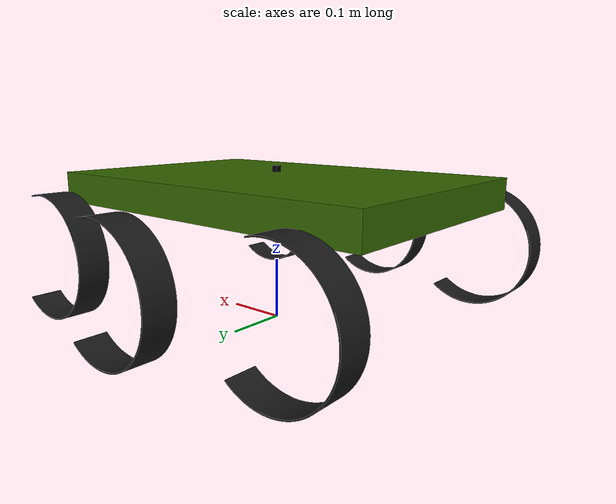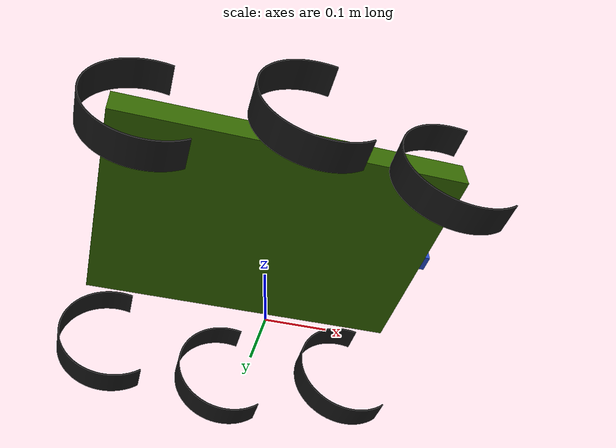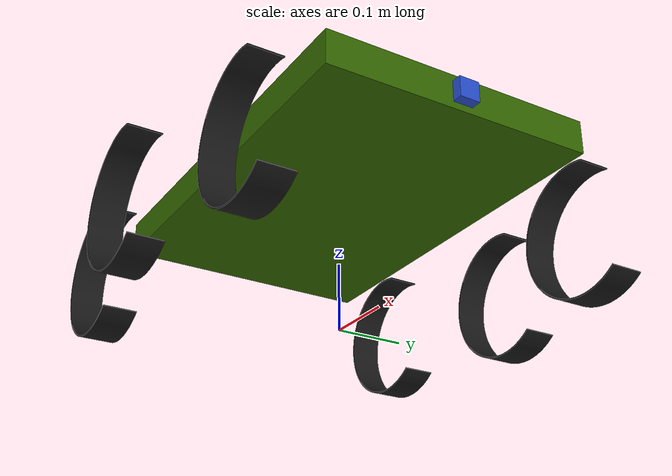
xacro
<?xml version="1.0" ?>
<robot name="hexapodo" xmlns:xacro="http://ros.org/wiki/xacro">

<!--        Definicion del robot hexapodo                                    -->

<!-- Archivos para incluir en el robot -->

<xacro:include filename="$(find hexapodo_description)/urdf/pata_c.xacro"/>
<xacro:include filename="$(find hexapodo_description)/urdf/base.xacro"/>
<xacro:include filename="$(find hexapodo_description)/urdf/sensores/kinect_camera.xacro"/>
<xacro:include filename="$(find hexapodo_description)/urdf/sensores/imu.xacro"/>
<xacro:include filename="$(find hexapodo_description)/urdf/sensores/hokuyo_sensor.xacro"/>

<!-- Declaracion del plugin gazebo_ros_control -->

<gazebo>
    <plugin name="gazebo_ros_control" filename="libgazebo_ros_control.so">
        <robotNamespace>/hexapodo</robotNamespace>
    </plugin>
</gazebo>

<!-- Instanciacion de las patas dentro de la descripcion del robot -->

<pata_c name="pata_1" parent_link="base_link" right="0">
    <origin xyz="${-235/1000} ${233/1000} ${0/1000}" rpy="0 0 0"/>
</pata_c>

<pata_c name="pata_2" parent_link="base_link" right="1">
    <origin xyz="${-235/1000} ${-233/1000} ${0/1000}" rpy="0 0 0"/>
</pata_c>

<pata_c name="pata_3" parent_link="base_link" right="0">
    <origin xyz="${0/1000} ${289/1000} ${0/1000}" rpy="0 0 0"/>
</pata_c>

<pata_c name="pata_4" parent_link="base_link" right="1">
    <origin xyz="${0/1000} ${-289/1000} ${0/1000}" rpy="0 0 0"/>
</pata_c>

<pata_c name="pata_5" parent_link="base_link" right="0">
    <origin xyz="${235/1000} ${233/1000} ${0/1000}" rpy="0 0 0"/>
</pata_c>

<pata_c name="pata_6" parent_link="base_link" right="1">
    <origin xyz="${235/1000} ${-233/1000} ${0/1000}" rpy="0 0 0"/>
</pata_c>

<!-- Instanciacion de la camara kinect dentro de la descripcion del robot -->

<!-- Instanciacion de la IMU dentro de la descripcion del robot -->

<imu name="imu1" parent_link="base_link">
    <origin xyz="${0/1000} ${0/1000} ${40/1000}" rpy="0 0 0"/>
</imu>

<hokuyo_sensor sensor_name="hokuyo" parent_name="base_link">
    <origin xyz="${300/1000} 0 0" rpy="0 0 0"/>
</hokuyo_sensor>

</robot>

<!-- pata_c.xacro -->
<robot name="pata_c" xmlns:xacro="http://ros.org/wiki/xacro">

<xacro:property name="motor_reduction"  value="${529.0/16}"/>
<xacro:property name="motor_max_effort" value="${3.75}"/>
<xacro:property name="motor_max_rev"    value="${1256.637/motor_reduction}"/>

<xacro:macro name="pata_c" params="name parent_link right *origin">

    <!--        Definicion de las patas en C del robot hexapodo              -->

    <!--Definicion del link de la pata-->

    <link name="${name}_pata_c_link">

        <!-- El origen de la pata varia en funcion de si se trata de una pata de la zona izquierda -->
        <!-- o de la zona derecha que se pasa como parametro -->

        <inertial>
            <origin xyz="${-42.439/1000} ${25/1000} ${-108.743/1000}" rpy="0 0 0"/>
            <mass value="0.057"/>
            <inertia ixx="${1038.176/(1e6)}"
                     ixy="${-218.169/(1e6)}"     iyy="${273.753/(1e6)}"
                     ixz="${59.956/(1e6)}"       iyz="${153.627/(1e6)}"      izz="${1217.746/(1e6)}"/>
        </inertial>

        <visual>
            <xacro:if value="${right == 1}">
                <origin xyz="0 0 0" rpy="${pi/2} 0 0"/>
            </xacro:if>
            <xacro:if value="${right == 0}">
                <origin xyz="0 0.05 0" rpy="${pi/2} 0 0"/>
            </xacro:if>
            <geometry>
                <mesh filename="package://hexapodo_description/meshes/pvc.stl" scale="0.001 0.001 0.001"/>
            </geometry>
            <material name="Grey">
                <color rgba="0.1 0.1 0.1 1"/>
            </material>
        </visual>

        <collision>
            <xacro:if value="${right == 1}">
                <origin xyz="0 0 0" rpy="${pi/2} 0 0"/>
            </xacro:if>
            <xacro:if value="${right == 0}">
                <origin xyz="0 0.05 0" rpy="${pi/2} 0 0"/>
            </xacro:if>
            <geometry>
                <mesh filename="package://hexapodo_description/meshes/pvc.stl" scale="0.001 0.001 0.001"/>
            </geometry>
        </collision>

    </link>

    <!--Definicion de la joint con el link padre-->

    <joint name="${name}_to_${parent_link}_joint" type="continuous">
        <xacro:insert_block name="origin"/>
        <parent link="${parent_link}"/>
        <child link="${name}_pata_c_link"/>
        <axis xyz="0 1 0"/>
        <limit effort="${motor_max_effort}" velocity="${motor_max_rev}"/> <!-- Nm rads/s -->
    </joint>

    <!--Definicion de la transmision de la pata-->

    <transmission name="${name}_transmission">
        <type>transmission_interface/SimpleTransmission</type>
        <joint name="${name}_to_${parent_link}_joint">
            <hardwareInterface>hardware_interface/EffortJointInterface</hardwareInterface>
        </joint>
        <actuator name="${name}_motor">
            <mechanicalReduction>${motor_reduction}</mechanicalReduction>
            <hardwareInterface>EffortJointInterface</hardwareInterface>
        </actuator>
    </transmission>

    <!--Definicion de las propiedades de gazebo-->

    <gazebo reference="${name}_pata_c_link">
        <mu1>1</mu1>
        <mu2>1</mu2>
        <material>Gazebo/Grey</material>
    </gazebo>

</xacro:macro>

</robot>

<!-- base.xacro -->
<robot name="base" xmlns:xacro="http://ros.org/wiki/xacro">

<xacro:property name="w_radius" value="${108.743/1e3}"/>

<link name="base_footprint">
    <visual>
        <geometry>
            <box size="0.0001 0.0001 0.0001"/>
        </geometry>
        <material name="transparente">
            <color rgba="0 0 0 0"/>
        </material>
    </visual>
</link>

<joint name="footprint_base_joint" type="fixed">
    <parent link="base_footprint"/>
    <child link="base_link"/>
    <origin xyz="0 0 ${w_radius*2}" rpy="0 0 0"/>
</joint>

<link name="base_link">

    <inertial>
        <origin xyz="${0/1e3} 0 ${1.417/1000}" rpy="${pi/2} 0 ${pi/2}"/>
        <mass value="5.771"/>
        <inertia ixx="${207161.695/(1e6)}"
                 ixy="${0}"                 iyy="${117325.409/(1e6)}"
                 ixz="${0}"                 iyz="${0}"                  izz="${320415.187/(1e6)}"/>
    </inertial>
    <visual>
        <origin xyz="${-300/1e3} 0 0" rpy="${pi/2} 0 ${pi/2}"/>
        <geometry>
            <mesh filename="package://hexapodo_description/meshes/chassis.stl" scale="0.001 0.001 0.001"/>
        </geometry>
        <material name="base_link_material">
            <color rgba="${51/255} ${102/255} ${0/255} 1"/>
        </material>
    </visual>
    <collision>
        <origin xyz="${-300/1e3} 0 0" rpy="${pi/2} 0 ${pi/2}"/>
        <geometry>
            <mesh filename="package://hexapodo_description/meshes/chassis.stl" scale="0.001 0.001 0.001"/>
        </geometry>
    </collision>

</link>

<gazebo reference="base_link">
    <material>Gazebo/Green</material>
</gazebo>

</robot>

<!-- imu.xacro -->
<robot name="imu" xmlns:xacro="http://ros.org/wiki/xacro">

<xacro:macro name="imu" params="name parent_link *origin">

    <link name="${name}_IMU">
        <inertial>
            <origin xyz="0 0 0" rpy="0 0 0"/>
            <mass value="0.001"/>
            <inertia ixx="0.001"  ixy="0"  ixz="0" iyy="0.001" iyz="0" izz="0.001" />
        </inertial>

        <visual>
            <origin xyz="0 0 -0.005" rpy="0 0 0" />
            <geometry>
                <box size="0.01 0.01 0.01" />
            </geometry>
            <material name="black">
                <color rgba="0 0 0 1"/>
            </material>
        </visual>

        <collision>
            <origin xyz="0 0 -0.005" rpy="0 0 0"/>
            <geometry>
                <box size="0.01 0.01 0.01" />
            </geometry>
        </collision>
    </link>

    <joint name="${name}_to_${parent_link}_joint" type="fixed">
        <xacro:insert_block name="origin"/>
        <parent link="${parent_link}"/>
        <child link="${name}_IMU"/>
    </joint>

    <gazebo>
      <plugin name="imu_plugin" filename="libgazebo_ros_imu.so">
        <alwaysOn>true</alwaysOn>
        <bodyName>base_footprint</bodyName>
        <topicName>imu</topicName>
        <serviceName>imu_service</serviceName>
        <gaussianNoise>0.0</gaussianNoise>
        <updateRate>20.0</updateRate>
      </plugin>
    </gazebo>

</xacro:macro>

</robot>

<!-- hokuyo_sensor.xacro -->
<robot name="hokuyo_sensor" xmlns:xacro="http://ros.org/wiki/xacro">

    <xacro:macro name="hokuyo_sensor" params="sensor_name parent_name *origin">
        <link name="${sensor_name}_hokuyo_base">
            <inertial>
                <mass value="0.1"/>
                <inertia    ixx="0.01"      ixy="0"     ixz="0"
                                            iyy="0.01"  iyz="0"
                                                        izz="0.01"/>
            </inertial>
            <visual>
                <geometry>
                    <box size="0.03 0.03 0.03"/>
                </geometry>
            </visual>
            <collision>
                <geometry>
                    <box size="0.03 0.03 0.03"/>
                </geometry>
            </collision>
        </link>
        <joint name="joint_${sensor_name}_to_parent" type="fixed">
            <xacro:insert_block name="origin"/>
            <parent link="${parent_name}"/>
            <child link="${sensor_name}_hokuyo_base"/>
        </joint>

        <!-- hokuyo -->
        <gazebo reference="${sensor_name}_hokuyo_base">
          <material>Gazebo/blue</material>
          <sensor type="ray" name="head_hokuyo_sensor">
            <pose>0 0 0 0 0 0</pose>
            <visualize>false</visualize>
            <update_rate>40</update_rate>
            <ray>
              <scan>
                <horizontal>
                  <samples>720</samples>
                  <resolution>1</resolution>
                  <min_angle>${-2*pi/3}</min_angle>
                  <max_angle>${2*pi/3}</max_angle>
                </horizontal>
              </scan>
              <range>
                <min>0.10</min>
                <max>30.0</max>
                <resolution>0.01</resolution>
              </range>
              <noise>
                <type>gaussian</type>
                <mean>0.0</mean>
                <stddev>0.01</stddev>
              </noise>
            </ray>
            <plugin name="gazebo_ros_head_hokuyo_controller" filename="libgazebo_ros_laser.so">
              <topicName>/robotest/laser/scan</topicName>
              <frameName>${sensor_name}_hokuyo_base</frameName>
            </plugin>
          </sensor>
        </gazebo>
    </xacro:macro>

</robot>
